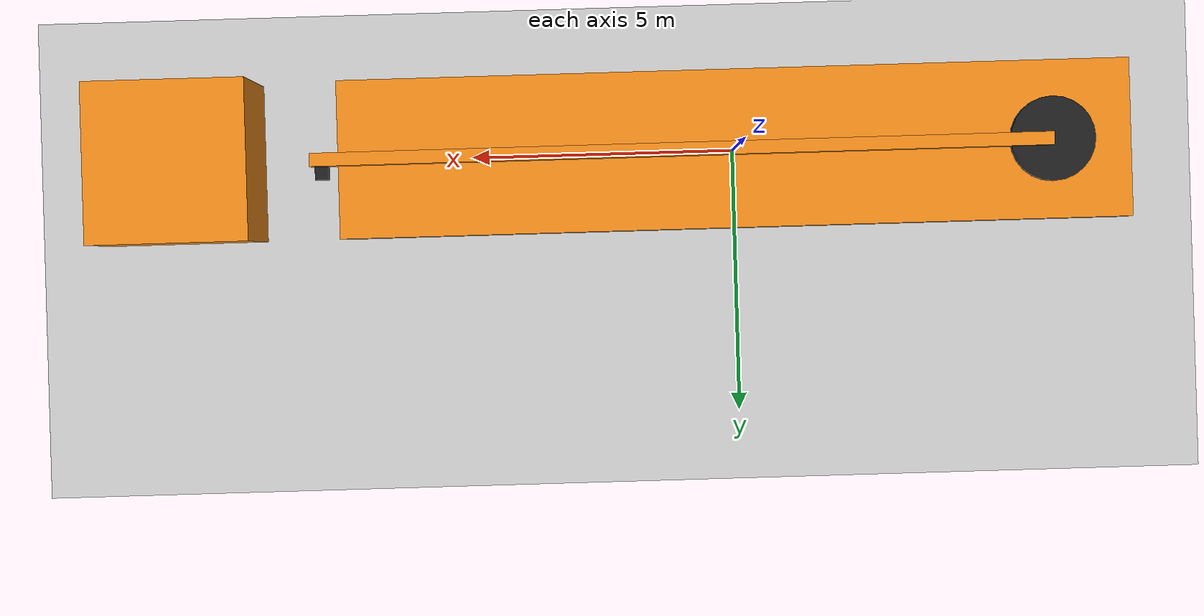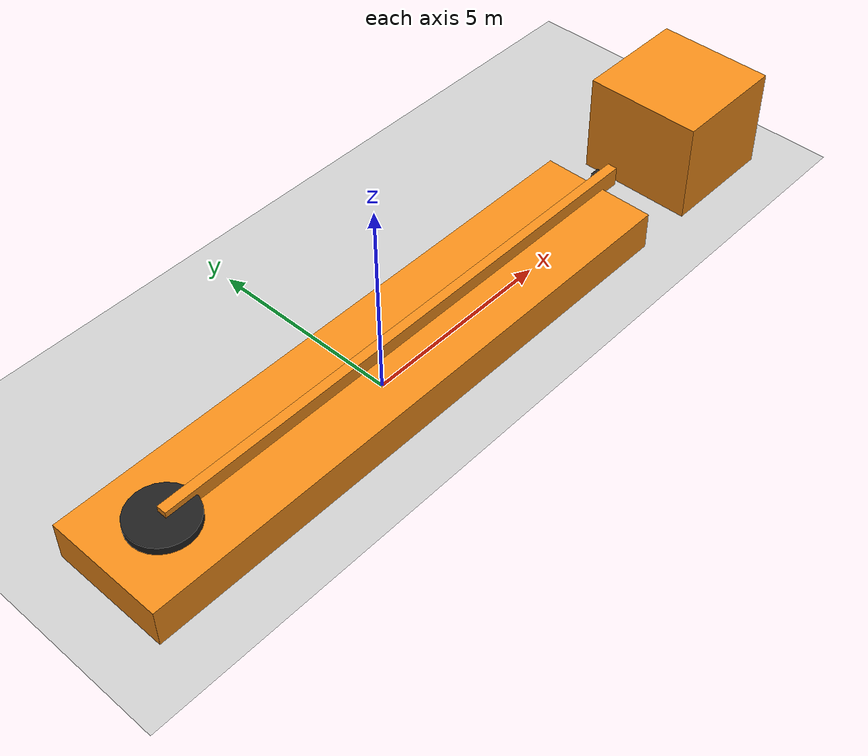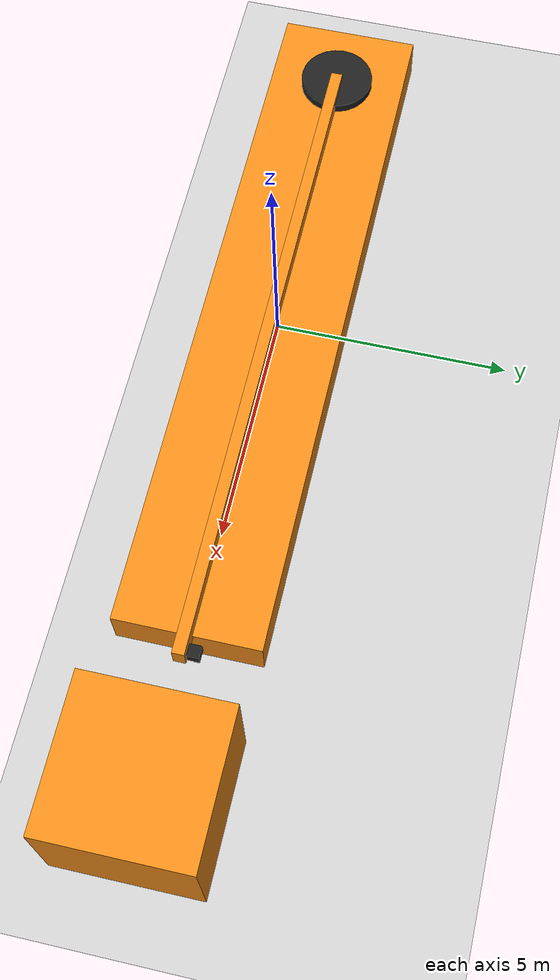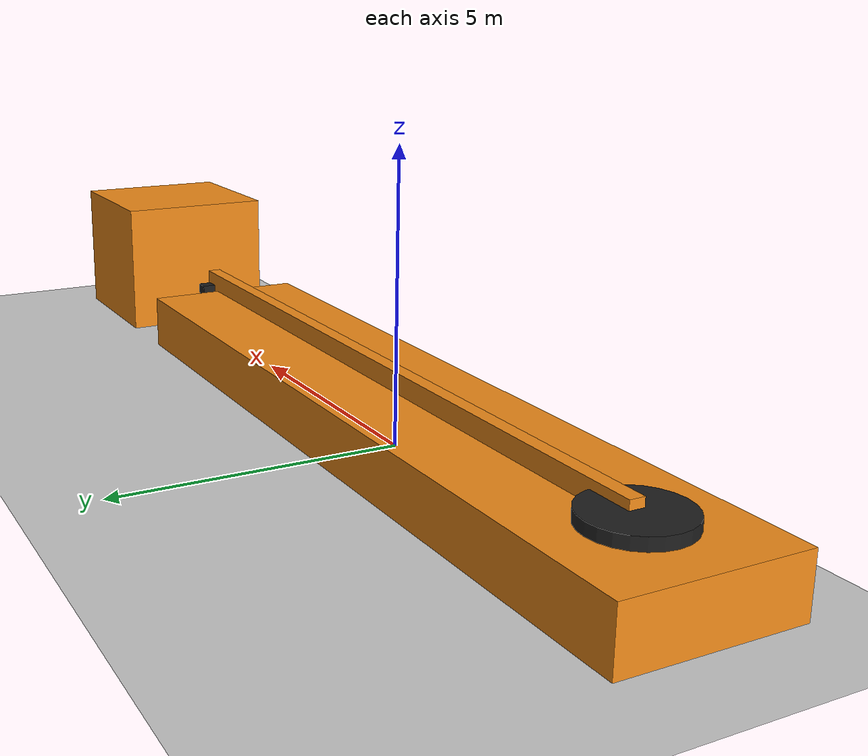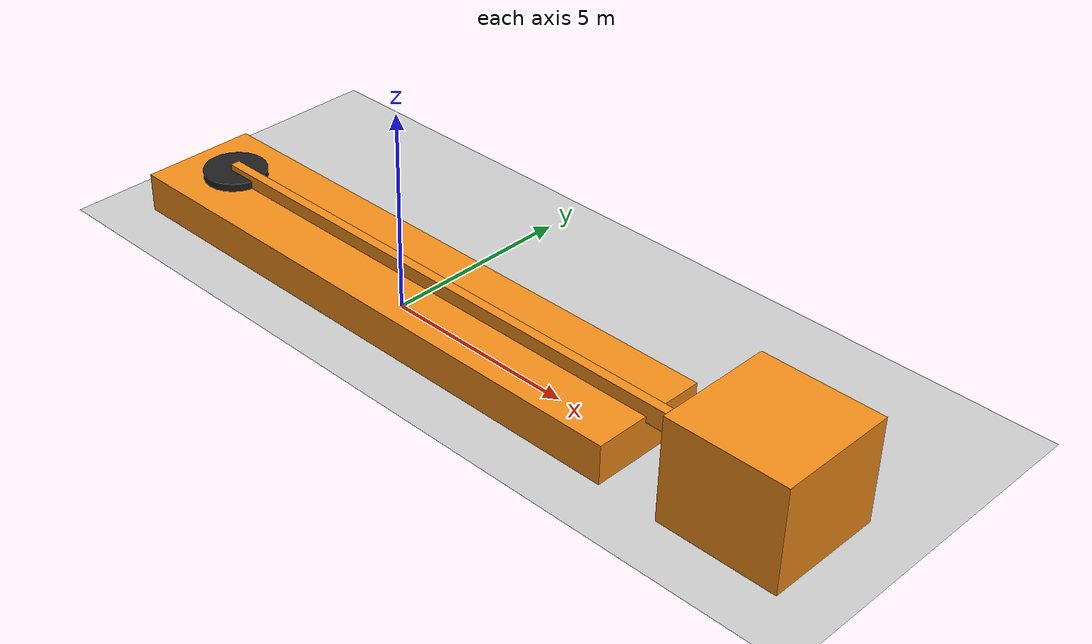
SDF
<sdf version="1.6">
 <world name="default">
  <model name="ground_plane">
   <static>1</static>
   <link name="link">
    <collision name="collision">
     <geometry><plane><normal>0 0 1</normal><size>100 100</size></plane></geometry>
     <surface><friction><ode><mu>100</mu><mu2>50</mu2></ode></friction></surface>
    </collision>
    <visual name="visual">
     <cast_shadows>0</cast_shadows>
     <geometry><plane><normal>0 0 1</normal><size>100 100</size></plane></geometry>
     <material>
      <script><uri>file://media/materials/scripts/gazebo.material</uri><name>Gazebo/Grey</name></script>
     </material>
    </visual>
   </link>
  </model>
  <light name="sun" type="directional">
   <pose>0 0 10 0 -0 0</pose>
   <diffuse>0.8 0.8 0.8 1</diffuse>
   <specular>0.1 0.1 0.1 1</specular>
   <attenuation>
    <range>1000</range>
    <constant>0.9</constant>
    <linear>0.01</linear>
    <quadratic>0.001</quadratic>
   </attenuation>
   <direction>-0.5 0.5 -1</direction>
  </light>
  <gravity>0 0 -9.8</gravity>
  <magnetic_field>6e-06 2.3e-05 -4.2e-05</magnetic_field>
  <atmosphere type="adiabatic"/>
  <physics name="default_physics" default="0" type="ode">
   <max_step_size>0.001</max_step_size>
   <real_time_factor>1</real_time_factor>
   <real_time_update_rate>1000</real_time_update_rate>
  </physics>
  <scene><ambient>0.4 0.4 0.4 1</ambient><background>0.7 0.7 0.7 1</background><shadows>1</shadows></scene>
  <spherical_coordinates>
   <surface_model>EARTH_WGS84</surface_model>
   <latitude_deg>0</latitude_deg>
   <longitude_deg>0</longitude_deg>
   <elevation>0</elevation>
   <heading_deg>0</heading_deg>
  </spherical_coordinates>
  <model name="cranebot">
   <link name="link1">
    <inertial>
     <pose>0 0 0.5 0 -0 0</pose>
     <mass>1</mass>
     <inertia><ixx>1</ixx><ixy>0</ixy><ixz>1</ixz><iyy>0</iyy><iyz>1</iyz><izz>0</izz></inertia>
    </inertial>
    <visual name="link1_visual">
     <pose>0 0 0.5 0 -0 0</pose>
     <geometry><box><size>15 3 1</size></box></geometry>
     <material>
      <script><name>Gazebo/Orange</name><uri>file://media/materials/scripts/gazebo.material</uri></script>
     </material>
    </visual>
   </link>
   <joint name="fixed" type="revolute">
    <child>link1</child>
    <parent>world</parent>
    <axis>
     <limit><lower>0</lower><upper>0</upper></limit>
     <dynamics>
      <damping>0</damping>
      <friction>0</friction>
      <spring_reference>0</spring_reference>
      <spring_stiffness>0</spring_stiffness>
     </dynamics>
     <use_parent_model_frame>1</use_parent_model_frame>
     <xyz>0 0 1</xyz>
    </axis>
   </joint>
   <link name="link2">
    <pose>-6 0 1 0 -0 0</pose>
    <inertial>
     <pose>0 0 0.1 0 -0 0</pose>
     <mass>0.1</mass>
     <inertia><ixx>1</ixx><ixy>0</ixy><ixz>0</ixz><iyy>1</iyy><iyz>0</iyz><izz>1</izz></inertia>
    </inertial>
    <visual name="link2_visual">
     <pose>0 0 0.1 0 -0 0</pose>
     <geometry><cylinder><length>0.2</length><radius>0.8</radius></cylinder></geometry>
     <material>
      <script><name>Gazebo/Black</name><uri>file://media/materials/scripts/gazebo.material</uri></script>
     </material>
    </visual>
   </link>
   <joint name="azimuth" type="revolute">
    <child>link2</child>
    <parent>link1</parent>
    <axis>
     <xyz>0 0 -1</xyz>
     <limit><lower>-3.14</lower><upper>3.14</upper><effort>10000</effort><velocity>0.01</velocity></limit>
     <dynamics><spring_reference>0</spring_reference><spring_stiffness>0</spring_stiffness></dynamics>
     <use_parent_model_frame>1</use_parent_model_frame>
    </axis>
   </joint>
   <link name="prlink1">
    <pose>-6 0 1.1 0 -0 0</pose>
    <inertial>
     <pose>7 0 0 0 -0 0</pose>
     <mass>1</mass>
     <inertia><ixx>1</ixx><ixy>0</ixy><ixz>0</ixz><iyy>1</iyy><iyz>0</iyz><izz>1</izz></inertia>
    </inertial>
    <visual name="prlink1_visual">
     <pose>7 0 0 0 -0 0</pose>
     <geometry><box><size>14 0.25 0.5</size></box></geometry>
     <material>
      <script><name>Gazebo/Orange</name><uri>file://media/materials/scripts/gazebo.material</uri></script>
     </material>
    </visual>
   </link>
   <joint name="elevation" type="revolute">
    <child>prlink1</child>
    <parent>link2</parent>
    <axis>
     <xyz>0 -1 0</xyz>
     <limit><lower>0</lower><upper>1.5</upper><effort>10000</effort><velocity>0.01</velocity></limit>
     <dynamics><spring_reference>0</spring_reference><spring_stiffness>0</spring_stiffness></dynamics>
     <use_parent_model_frame>1</use_parent_model_frame>
    </axis>
   </joint>
   <link name="prlink2">
    <pose>-6 0 1.1 0 -0 0</pose>
    <inertial>
     <pose>7 0 0 0 -0 0</pose>
     <mass>1</mass>
     <inertia><ixx>1</ixx><ixy>0</ixy><ixz>0</ixz><iyy>1</iyy><iyz>0</iyz><izz>1</izz></inertia>
    </inertial>
    <visual name="prlink2_visual">
     <pose>7 0 0 0 -0 0</pose>
     <geometry><box><size>14 0.25 0.5</size></box></geometry>
     <material>
      <script><name>Gazebo/Orange</name><uri>file://media/materials/scripts/gazebo.material</uri></script>
     </material>
    </visual>
   </link>
   <joint name="prj1" type="prismatic">
    <child>prlink2</child>
    <parent>prlink1</parent>
    <axis>
     <xyz>1 0 0</xyz>
     <limit><lower>0</lower><upper>14</upper><effort>10000</effort><velocity>0.05</velocity></limit>
     <dynamics><spring_reference>0</spring_reference><spring_stiffness>0</spring_stiffness></dynamics>
     <use_parent_model_frame>1</use_parent_model_frame>
    </axis>
   </joint>
   <link name="prlink3">
    <pose>-6 0 1.1 0 -0 0</pose>
    <inertial>
     <pose>7 0 0 0 -0 0</pose>
     <mass>1</mass>
     <inertia><ixx>1</ixx><ixy>0</ixy><ixz>0</ixz><iyy>1</iyy><iyz>0</iyz><izz>1</izz></inertia>
    </inertial>
    <visual name="prlink3_visual">
     <pose>7 0 0 0 -0 0</pose>
     <geometry><box><size>14 0.25 0.5</size></box></geometry>
     <material>
      <script><name>Gazebo/Orange</name><uri>file://media/materials/scripts/gazebo.material</uri></script>
     </material>
    </visual>
   </link>
   <joint name="prj2" type="prismatic">
    <child>prlink3</child>
    <parent>prlink2</parent>
    <axis>
     <xyz>1 0 0</xyz>
     <limit><lower>0</lower><upper>14</upper><effort>10000</effort><velocity>0.05</velocity></limit>
     <dynamics><spring_reference>0</spring_reference><spring_stiffness>0</spring_stiffness></dynamics>
     <use_parent_model_frame>1</use_parent_model_frame>
    </axis>
   </joint>
   <link name="link4">
    <pose>10.5 0 1.1 0 -0 0</pose>
    <inertial>
     <mass>0.001</mass>
     <inertia><ixx>1</ixx><ixy>0</ixy><ixz>0</ixz><iyy>1</iyy><iyz>0</iyz><izz>1</izz></inertia>
    </inertial>
   </link>
   <joint name="free_joint" type="revolute">
    <child>link4</child>
    <parent>prlink3</parent>
    <axis>
     <xyz>0 1 0</xyz>
     <limit><lower>-1e+16</lower><upper>1e+16</upper></limit>
     <dynamics>
      <damping>10</damping>
      <friction>0</friction>
      <spring_reference>0</spring_reference>
      <spring_stiffness>0</spring_stiffness>
     </dynamics>
     <use_parent_model_frame>1</use_parent_model_frame>
    </axis>
   </joint>
   <link name="load">
    <pose>10.5 0 1.1 0 -0 0</pose>
    <inertial>
     <mass>0.1</mass>
     <inertia><ixx>1</ixx><ixy>0</ixy><ixz>0</ixz><iyy>1</iyy><iyz>0</iyz><izz>1</izz></inertia>
    </inertial>
    <collision name="load_collision">
     <pose>0 0 -1.5 0 -0 0</pose>
     <geometry><box><size>0.01 0.01 0.01</size></box></geometry>
    </collision>
    <visual name="load_visual">
     <geometry><box><size>3 3 3</size></box></geometry>
     <material>
      <script><name>Gazebo/Orange</name><uri>file://media/materials/scripts/gazebo.material</uri></script>
     </material>
    </visual>
   </link>
   <joint name="cablejoint" type="prismatic">
    <child>load</child>
    <parent>link4</parent>
    <axis>
     <xyz>0 0 1</xyz>
     <limit><lower>-50</lower><upper>0</upper><effort>100</effort><velocity>0.01</velocity></limit>
     <dynamics>
      <damping>0</damping>
      <friction>10</friction>
      <spring_reference>0</spring_reference>
      <spring_stiffness>0</spring_stiffness>
     </dynamics>
     <use_parent_model_frame>1</use_parent_model_frame>
    </axis>
   </joint>
   <link name="lidar_base">
    <pose>7.8 0.25 1.1 0 -0 0</pose>
    <inertial>
     <mass>1</mass>
     <inertia><ixx>1</ixx><ixy>0</ixy><ixz>0</ixz><iyy>1</iyy><iyz>0</iyz><izz>1</izz></inertia>
    </inertial>
    <visual name="lidar_base_visual">
     <pose>0 0 -0.125 0 -0 0</pose>
     <geometry><box><size>0.25 0.25 0.25</size></box></geometry>
     <material>
      <script><name>Gazebo/Black</name><uri>file://media/materials/scripts/gazebo.material</uri></script>
     </material>
    </visual>
   </link>
   <joint name="lidar_base_joint" type="revolute">
    <child>lidar_base</child>
    <parent>prlink3</parent>
    <axis>
     <xyz>0 1 0</xyz>
     <limit><lower>-1e+16</lower><upper>1e+16</upper></limit>
     <dynamics>
      <damping>0.5</damping>
      <friction>0</friction>
      <spring_reference>0</spring_reference>
      <spring_stiffness>0</spring_stiffness>
     </dynamics>
     <use_parent_model_frame>1</use_parent_model_frame>
    </axis>
   </joint>
   <link name="lidar_mount">
    <pose>7.8 0.25 0.65 0 -0 0</pose>
    <inertial>
     <mass>0.001</mass>
     <inertia><ixx>1</ixx><ixy>0</ixy><ixz>0</ixz><iyy>1</iyy><iyz>0</iyz><izz>1</izz></inertia>
    </inertial>
    <visual name="lidar_mount_visual">
     <geometry><box><size>0.04 0.1 0.4</size></box></geometry>
     <material>
      <script><name>Gazebo/Black</name><uri>file://media/materials/scripts/gazebo.material</uri></script>
     </material>
    </visual>
   </link>
   <joint name="lidar_joint" type="revolute">
    <child>lidar_mount</child>
    <parent>lidar_base</parent>
    <axis>
     <xyz>0 0 1</xyz>
     <limit><lower>-1e+16</lower><upper>1e+16</upper></limit>
     <dynamics><spring_reference>0</spring_reference><spring_stiffness>0</spring_stiffness></dynamics>
     <use_parent_model_frame>1</use_parent_model_frame>
    </axis>
   </joint>
   <static>0</static>
   <plugin name="gazebo_ros_control" filename="libgazebo_ros_control.so">
    <robotNamespace>/cranebot</robotNamespace>
    <robotSimType>gazebo_ros_control/DefaultRobotHWSim</robotSimType>
    <legacyModeNS>true</legacyModeNS>
   </plugin>
   <pose>-3e-06 0 0 0 1e-06 0</pose>
  </model>
 </world>
</sdf>
